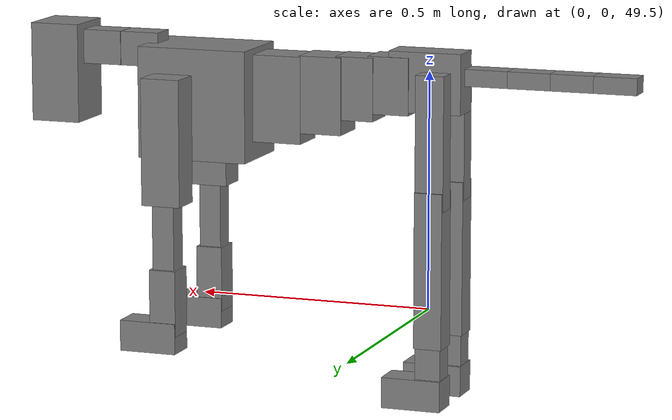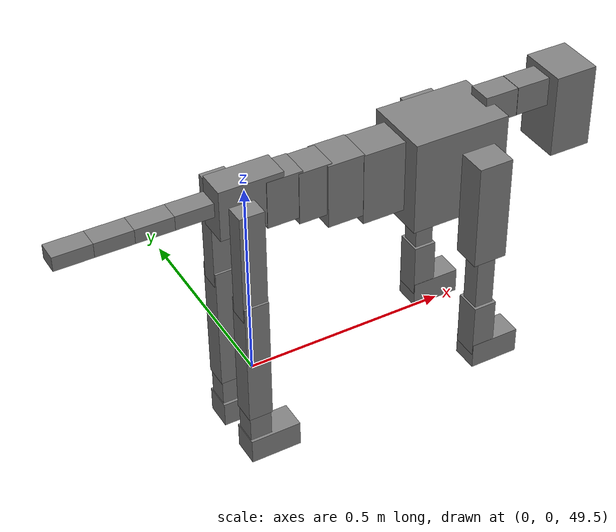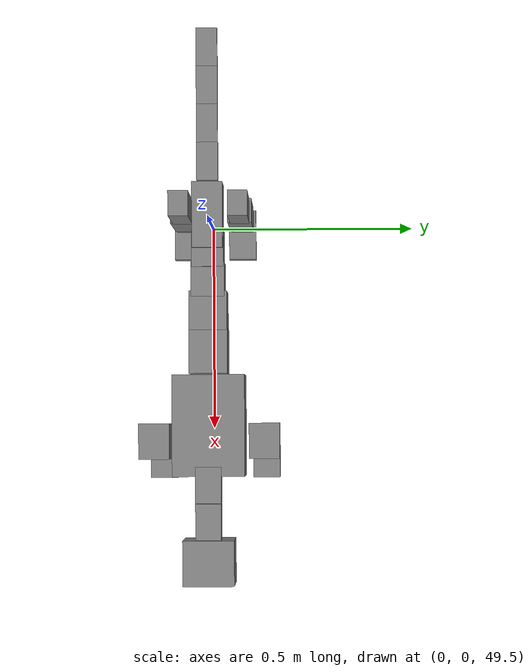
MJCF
<mujoco model="dog">

    <default>
        <joint armature="0.02" stiffness="1" damping="0.2" limited="true"/>
        <geom condim="3" friction="1 0.05 0.05" margin="0.01"/>
        <motor ctrllimited="true" ctrlrange="-1.0 1.0" forcelimited="true" gear="50"/>
    </default>

    <compiler inertiafromgeom="true" angle="radian"/>

    <option timestep="0.016" iterations="50" tolerance="1e-10" solver="Newton" jacobian="dense" cone="pyramidal"/>

    <size nconmax="20000" njmax="60000" nstack="5000000"/>
    <visual>
        <map force="0.1" zfar="30"/>
        <rgba haze="0.15 0.25 0.35 1"/>
        <quality shadowsize="2048"/>
        <global offwidth="800" offheight="800"/>
    </visual>

    <asset>
        <texture type="skybox" builtin="gradient" rgb1="0.3 0.5 0.7" rgb2="0 0 0" width="512" height="512"/>
        <texture name="texplane" type="2d" builtin="checker" rgb1=".2 .3 .4" rgb2=".1 0.15 0.2" width="512" height="512"
                 mark="cross" markrgb=".8 .8 .8"/>
        <texture name="texgeom" type="cube" builtin="flat" mark="cross" width="127" height="1278" rgb1="0.8 0.6 0.4"
                 rgb2="0.8 0.6 0.4" markrgb="1 1 1" random="0.01"/>

        <material name="matplane" reflectance="0.3" texture="texplane" texrepeat="1 1" texuniform="true"/>
        <material name="matgeom" texture="texgeom" texuniform="true" rgba="0.8 0.6 .4 1"/>
    </asset>

    <worldbody>
        <geom name="floor" pos="0 0 0" size="0 0 .25" type="plane" material="matplane" condim="3"/>

        <light directional="false" diffuse=".2 .2 .2" specular="0 0 0" pos="0 0 5" dir="0 0 -1" castshadow="false"/>
        <light mode="targetbodycom" target="torso" directional="false" diffuse=".8 .8 .8" specular="0.3 0.3 0.3"
               pos="0 0 4.0" dir="0 0 -1"/>

        <body name="root" pos="0 0 50">
            <freejoint name="root_1"/>
            <geom type="box" pos="0 0 -0.02" size="0.0774  0.0358  0.063" density="2030"/>

            <body name="spine1" pos="0.054 0 0">
                <joint name="spine1_y" axis="0 1 0" range="0 0.7" limited="true"/>
                <geom type="box" pos="0.02375 0 -0.03" size="0.04375  0.0375  0.05985" density="2030"/>

                <body name="spine2" pos="0.0612 0 0">
                    <joint name="spine2_y" axis="0 1 0" range="-0.15 0.15" limited="true"/>
                    <geom type="box" pos="0.03555  0  -0.04" size="0.04055  0.039  0.06615" density="2030"/>

                    <body name="spine3" pos="0.0730 0 0">
                        <joint name="spine3_y" axis="0 1 0" range="-0.15 0.15" limited="true"/>
                        <geom type="box" pos="0.03555  0  -0.057" size="0.04555  0.0445  0.081" density="2030"/>

                        <body name="spine4" pos="0.0780 0 0">
                            <joint name="spine4_y" axis="0 1 0" range="-0.15 0.15" limited="true"/>
                            <geom type="box" pos="0.05265  0  -0.07" size="0.05265  0.045  0.09135" density="2030"/>

                            <body name="torso" pos="0.1082 0 0">
                                <joint name="torso_y" axis="0 1 0" range="-0.15 0.15" limited="true"/>
                                <geom type="box" pos="0.11925  0  -0.085" size="0.11925  0.085  0.11745"
                                      density="2030"/>

                                <body name="neck1" pos="0.2160  0   0.0180">
                                    <joint name="neck1_y" axis="0 1 0" range="-1.2  -1" limited="true"/>
                                    <geom type="box" pos="0.0423  0  0" size="0.0423  0.03  0.036" density="2325"/>

                                    <body name="neck2" pos="0.0853  0  0">
                                        <joint name="neck2_y" axis="0 1 0" range="0.1  0" limited="true"/>
                                        <geom type="box" pos="0.0423  0  0" size="0.0423  0.03  0.036" density="2325"/>

                                        <body name="head" pos="0.0853  0  0">
                                            <joint name="head_y" axis="0 1 0" range="-0.3  -0.2" limited="true"/>
                                            <geom type="box" pos="0.0531  0  -0.055" size="0.0531  0.06  0.1044"
                                                  density="4030"/>

                                        </body>
                                    </body>
                                </body>

                                <body name="front_shoulder" pos="0.156  0   -0.0480">
                                    <joint name="front_shoulder_y" axis="0 1 0" range="-1 1.5" limited="true"/>
                                    <geom type="box" pos="0 0.13 -0.1067" size="0.0421  0.0360  0.1334" density="1158"/>
                                    <geom type="box" pos="0 -0.13 -0.1067" size="0.0421  0.0360  0.1334"
                                          density="1158"/>

                                    <body name="front_elbow" pos="0  0  -0.2134">
                                        <joint name="front_elbow_y" axis="0 1 0" range="-2 0" limited="true"/>
                                        <geom type="box" pos="0 0.13 -0.0881" size="0.0237  0.0242  0.0881"
                                              density="1081"/>
                                        <geom type="box" pos="0 -0.13 -0.0881" size="0.0237  0.0242  0.0881"
                                              density="1081"/>

                                        <body name="front_wrist" pos="0  0  -0.1762">
                                            <joint name="front_wrist_y" axis="0 1 0" range="-0.2 0" limited="true"/>
                                            <geom type="box" pos="0 0.13 -0.0568" size="0.0287  0.0319  0.0699"
                                                  density="1664"/>
                                            <geom type="box" pos="0 -0.13 -0.0568" size="0.0287  0.0319  0.0699"
                                                  density="1664"/>

                                            <body name="front_finger_end" pos="0  0  -0.1136">
                                                <joint name="front_finger_y" axis="0 1 0" range="-0.4 1"
                                                       limited="true"/>
                                                <geom type="box" pos="0.0336  0.13  -0.0176"
                                                      size="0.0615  0.0336  0.0326" density="1515"/>
                                                <geom type="box" pos="0.0336  -0.13  -0.0176"
                                                      size="0.0615  0.0336  0.0326" density="1515"/>

                                            </body>

                                        </body>
                                    </body>
                                </body>

                            </body>
                        </body>
                    </body>
                </body>
            </body>

            <body name="back_hip" pos="-0.03 0 -0.018">
                <joint name="back_hip_y" axis="0 1 0" range="-1.5 0.3" limited="true"/>
                <geom type="box" pos="0 0.07 -0.1167" size="0.0301  0.0236  0.1395" density="1154"/>
                <geom type="box" pos="0 -0.07 -0.1167" size="0.0301  0.0236  0.1395" density="1154"/>

                <body name="back_knee" pos="0  0  -0.2335">
                    <joint name="back_knee_y" axis="0 1 0" range="0 2.8" limited="true"/>
                    <geom type="box" pos="0 0.07 -0.1469" size="0.0295  0.0291  0.1625" density="1227"/>
                    <geom type="box" pos="0 -0.07 -0.1469" size="0.0295  0.0291  0.1625" density="1227"/>

                    <body name="back_ankle" pos="0  0  -0.2938">
                        <joint name="back_ankle_y" axis="0 1 0" range="-2.2 0" limited="true"/>
                        <geom type="box" pos="0 0.07 -0.0479" size="0.0269  0.0269  0.0591" density="1284"/>
                        <geom type="box" pos="0 -0.07 -0.0479" size="0.0269  0.0269  0.0591" density="1284"/>

                        <body name="back_toe_end" pos="0  0  -0.0957">
                            <joint name="back_toe_y" axis="0 1 0" range="-0.4 1" limited="true"/>
                            <geom type="box" pos="0.0343  0.07  -0.0172" size="0.0629  0.0343  0.0322" density="1515"/>
                            <geom type="box" pos="0.0343  -0.07  -0.0172" size="0.0629  0.0343  0.0322" density="1515"/>

                        </body>
                    </body>
                </body>
            </body>

            <body name="tail1" pos="-0.074 0 -0.006">
                <joint name="tail1_y" axis="0 1 0" range="-0.2 0.2" limited="true"/>
                <geom type="box" pos="-0.0536  0  0" size="0.045  0.025  0.0175" density="1587"/>

                <body name="tail2" pos="-0.09 0 0">
                    <joint name="tail2_y" axis="0 1 0" range="-0.2 0.2" limited="true"/>
                    <geom type="box" pos="-0.0536  0  0" size="0.045  0.025  0.0175" density="1587"/>

                    <body name="tail3" pos="-0.09 0 0">
                        <joint name="tail3_y" axis="0 1 0" range="-0.2 0.2" limited="true"/>
                        <geom type="box" pos="-0.0536  0  0" size="0.045  0.025  0.0175" density="1587"/>

                        <body name="tail4" pos="-0.09 0 0">
                            <joint name="tail4_y" axis="0 1 0" range="-0.2 0.2" limited="true"/>
                            <geom type="box" pos="-0.0536  0  0" size="0.045  0.025  0.0175" density="1587"/>

                        </body>
                    </body>
                </body>
            </body>
        </body>
    </worldbody>

    <actuator>
        <motor joint="spine1_y" forcerange="-150 150     "/>
        <motor joint="spine2_y" forcerange="-150 150     "/>
        <motor joint="spine3_y" forcerange="-150 150     "/>
        <motor joint="spine4_y" forcerange="-150 150     "/>
        <motor joint="torso_y" forcerange="-150 150     "/>
        <motor joint="neck1_y" forcerange="-100 100       "/>
        <motor joint="neck2_y" forcerange="-100 100       "/>
        <motor joint="head_y" forcerange="-150 150       "/>
        <motor joint="front_shoulder_y" forcerange="-148.94 190.85"/>
        <motor joint="front_elbow_y" forcerange="-101.43 174.51"/>
        <motor joint="front_wrist_y" forcerange="-144.86 110.51"/>
        <motor joint="front_finger_y" forcerange="-66.18 72.80"/>
        <motor joint="back_hip_y" forcerange="-238.44 276.19"/>
        <motor joint="back_knee_y" forcerange="-370.66 252.29"/>
        <motor joint="back_angle_y" forcerange="-87.19 242.51"/>
        <motor joint="back_toe_y" forcerange="-115.62 78.81"/>
        <motor joint="tail1_y" forcerange="-50 50     "/>
        <motor joint="tail2_y" forcerange="-50 50     "/>
        <motor joint="tail3_y" forcerange="-50 50     "/>
        <motor joint="tail4_y" forcerange="-50 50     "/>
    </actuator>
</mujoco>
